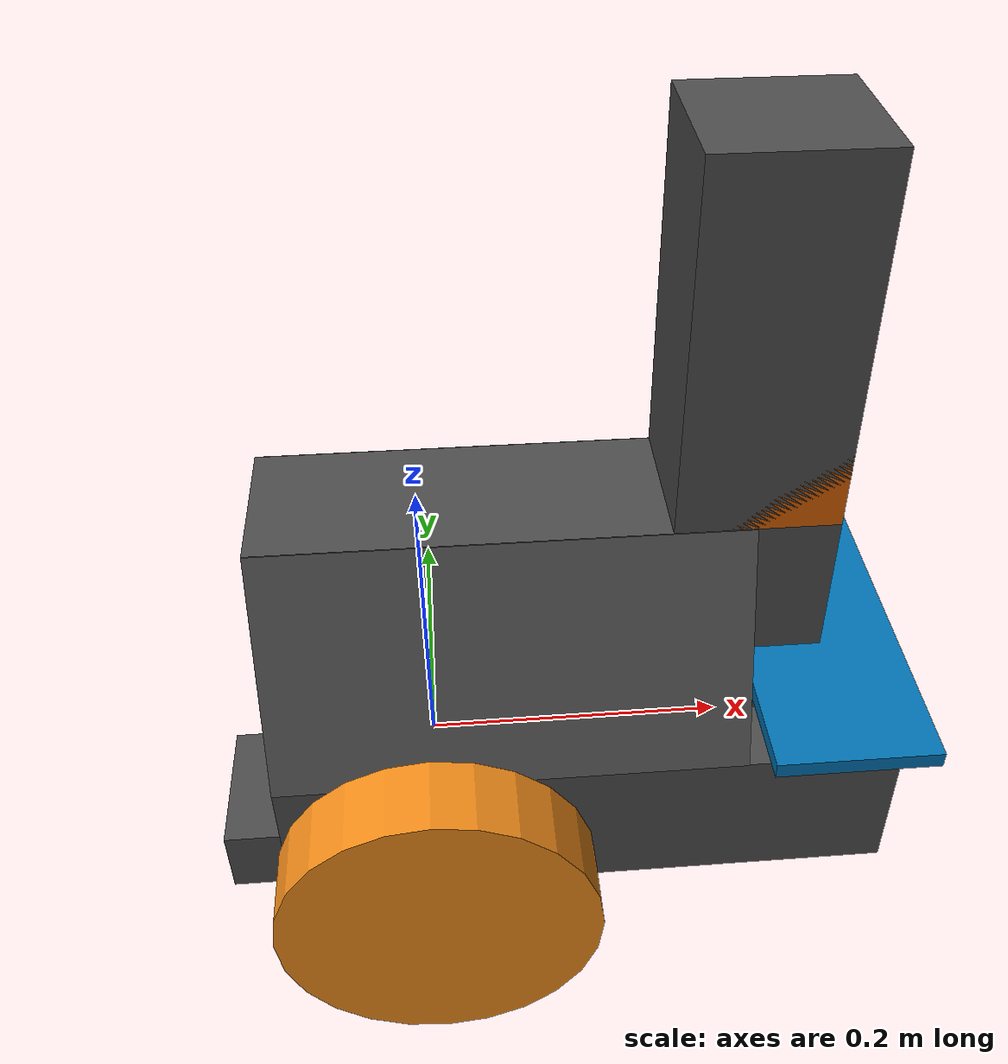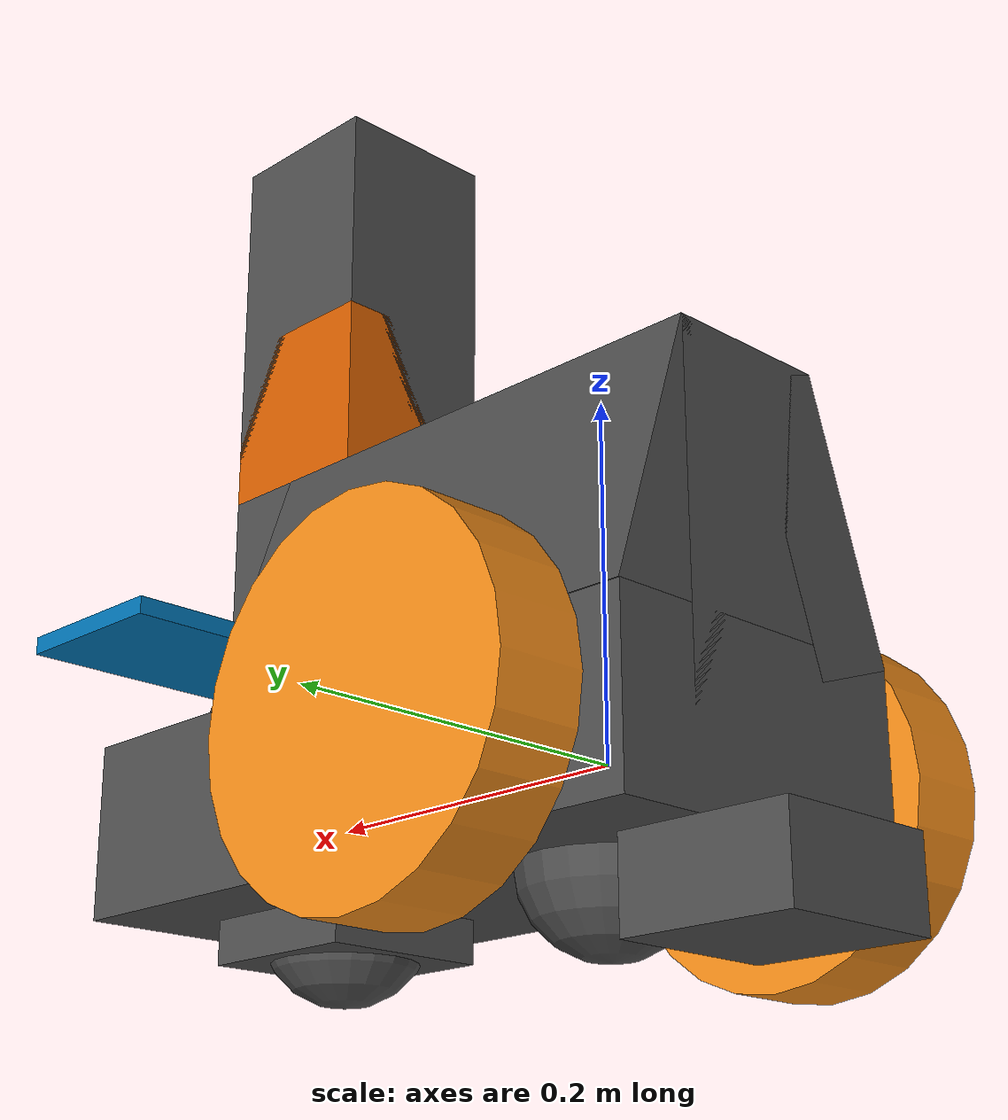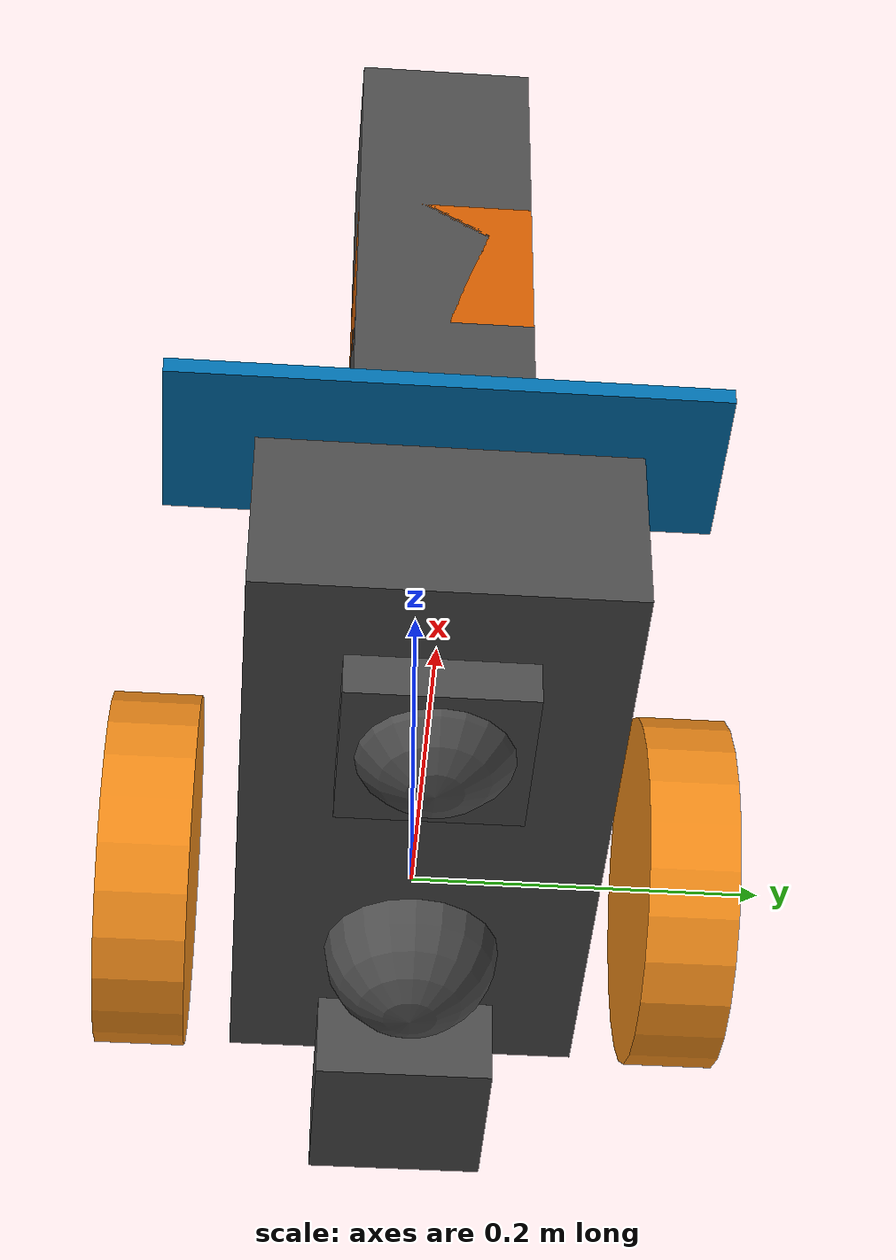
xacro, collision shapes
<?xml version='1.0'?>

<robot name="ucho_bot" xmlns:xacro="http://www.ros.org/wiki/xacro">

<xacro:include filename="$(find udacity_map)/urdf/ucho_bot.gazebo" />

  <link name="robot_footprint"></link>

<!--Chassis-->
  <link name="chassis">

    <inertial>
      <mass value="15.0"/>
      <origin xyz="0.0 0 0" rpy=" 0 0 0"/>
      <inertia
          ixx="0.1" ixy="0" ixz="0"
          iyy="0.1" iyz="0"
          izz="0.1"
      />
    </inertial>
				<!--Piece1-->
    <collision name='piece1_coll'>
      <origin xyz="0.1 0 0" rpy=" 0 0 0"/>
      <geometry>
        <box size=".4 .2 .1"/>
      </geometry>
    </collision>

    <visual name='piece1_visu'>
      <origin xyz="0.1 0 0" rpy=" 0 0 0"/>
      <geometry>
        <box size=".4 .2 .1"/>
      </geometry>
    </visual>

				<!--Piece2-->
    <collision name='piece2_coll'>
      <origin xyz="0.05 0 0.1" rpy=" 1.5708 0 0"/>
      <geometry>
        <box size=".3 .2 .1"/>
      </geometry>
    </collision>

    <visual name='piece2_visu'>
      <origin xyz="0.05 0 0.1" rpy=" 1.5708 0 0"/>
      <geometry>
        <box size=".3 .2 .1"/>
      </geometry>
    </visual>

				<!--Piece3-->
    <collision name='piece3_coll'>
      <origin xyz="0.05 -0.049 0.116" rpy=" -0.32175 0 0"/>
      <geometry>
        <box size=".3 .0560 .1581"/>
      </geometry>
    </collision>

    <visual name='piece3_visu'>
      <origin xyz="0.05 -0.049 0.116" rpy=" -0.32175 0 0"/>
      <geometry>
        <box size=".3 .0560 .1581"/>
      </geometry>
    </visual>

				<!--Piece4-->
    <collision name='piece4_coll'>
      <origin xyz="0.05 0.049 0.116" rpy=" 0.32175 0 0"/>
      <geometry>
        <box size=".3 .0560 .1581"/>
      </geometry>
    </collision>

    <visual name='piece4_visu'>
      <origin xyz="0.05 0.049 0.116" rpy=" 0.32175 0 0"/>
      <geometry>
        <box size=".3 .0560 .1581"/>
      </geometry>
    </visual>

				<!--Piece5-->
    <collision name='piece5_coll'>
      <origin xyz="0.20 0 0.175" rpy=" 0 0 0"/>
      <geometry>
        <box size=".1 .1 .5"/>
      </geometry>
    </collision>

    <visual name='piece5_visu'>
      <origin xyz="0.20 0 0.175" rpy=" 0 0 0"/>
      <geometry>
        <box size=".1 .1 .05"/>
      </geometry>
    </visual>

                                <!--BallBack-->
    <collision name='back_caster_collision'>
      <origin xyz="0 0 -0.05" rpy=" 0 0 0"/>
      <geometry>
        <sphere radius="0.049"/>
      </geometry>
    </collision>

    <visual name='back_caster_visual'>
      <origin xyz="0 0 -0.05" rpy=" 0 0 0"/>
      <geometry>
        <sphere radius="0.05"/>
      </geometry>
    </visual>

                               <!--BallFront-->
    <collision name='front_caster_collision'>
      <origin xyz="0.2 0 -0.05" rpy=" 0 0 0"/>
      <geometry>
        <sphere radius="0.049"/>
      </geometry>
    </collision>

    <visual name='front_caster_visual'>
      <origin xyz="0.2 0 -0.05" rpy=" 0 0 0"/>
      <geometry>
        <sphere radius="0.05"/>
      </geometry>
    </visual>

                               <!--BarBack-->
    <collision name='back_barra_collision'>
      <origin xyz="-0.1 0 -0.075" rpy=" 0 0 0"/>
      <geometry>
        <box size=".1 .1 .05"/>
      </geometry>
    </collision>

    <visual name='back_barra_visual'>
      <origin xyz="-0.1 0 -0.075" rpy=" 0 0 0"/>
      <geometry>
        <box size=".1 .1 .05"/>
      </geometry>
    </visual>

  </link>

  <joint name="robot_footprint_joint" type="fixed">
    <origin xyz="0 0 0" rpy="0 0 0" />
    <parent link="robot_footprint"/>
    <child link="chassis" />
  </joint>

<!--Wheels-->
  <link name="left_wheel">

    <inertial>
      <mass value="5.0"/>
      <origin xyz="0.0 0 0" rpy=" 0 0 0"/>
      <inertia
          ixx="0.1" ixy="0" ixz="0"
          iyy="0.1" iyz="0"
          izz="0.1"
      />
    </inertial>

    <collision>
      <origin xyz="0 0 0" rpy="1.5707 0 0"/>
      <geometry>
        <cylinder radius="0.1" length="0.05"/>
      </geometry>
    </collision>

    <visual>
      <origin xyz="0 0 0" rpy="1.5707 0 0"/>
      <geometry>
        <cylinder radius="0.1" length="0.05"/>
      </geometry>
    </visual>

  </link>

  <joint type="continuous" name="left_wheel_hinge" >
    <origin xyz="0 0.15 0" rpy="0 0 0"/>
    <child link="left_wheel"/>
    <parent link="chassis" />
    <axis xyz="0 1 0" rpy="0 0 0" />
    <limit effort="10000" velocity="1000" />
    <joint_properties damping="1.0" friction="1.0" />
  </joint>

  <link name="right_wheel">

    <inertial>
      <mass value="5.0"/>
      <origin xyz="0.0 0 0" rpy=" 0 0 0"/>
      <inertia
          ixx="0.1" ixy="0" ixz="0"
          iyy="0.1" iyz="0"
          izz="0.1"
      />
    </inertial>

    <collision>
      <origin xyz="0 0 0" rpy="1.5707 0 0"/>
      <geometry>
        <cylinder radius="0.1" length="0.05"/>
      </geometry>
    </collision>

    <visual>
      <origin xyz="0 0 0" rpy="1.5707 0 0"/>
      <geometry>
        <cylinder radius="0.1" length="0.05"/>
      </geometry>
    </visual>
  </link>

  <joint type="continuous" name="right_wheel_hinge" >
    <origin xyz="0 -0.15 0" rpy="0 0 0"/>
    <child link="right_wheel"/>
    <parent link="chassis" />
    <axis xyz="0 1 0" rpy="0 0 0" />
    <limit effort="10000" velocity="1000" />
    <joint_properties damping="1.0" friction="1.0" />
  </joint>

<!--Camera-->
  <link name="camera">

    <inertial>
      <mass value="0.1"/>
      <origin xyz="0 0 0" rpy=" 0 0 0"/>
      <inertia
          ixx="1e-6" ixy="0" ixz="0"
          iyy="1e-6" iyz="0"
          izz="1e-6"
      />
    </inertial>

    <collision>
      <origin xyz="0 0 0" rpy=" 0 0 0"/>
      <geometry>
        <box size="0.1 0.3 0.01" />
      </geometry>
    </collision>

    <visual>
      <origin xyz="0.025 0 0" rpy=" 0 0 0"/>
      <geometry>
        <mesh filename="package://udacity_map/meshes/kinect.dae" />
        <!--box size="0.05 0.2 0.05" /-->
      </geometry>
    </visual>

  </link>

  <joint type="fixed" name="camera_link" >
    <origin xyz="0.25 0 0.1" rpy="0 0 0" />
    <child link="camera" />
    <parent link="chassis" />
  </joint>

<!--Laser-->
  <link name="hokuyo">

    <inertial>
      <mass value="0.1"/>
      <origin xyz="0 0 0" rpy=" 0 0 0"/>
      <inertia
          ixx="1e-6" ixy="0" ixz="0"
          iyy="1e-6" iyz="0"
          izz="1e-6"
      />
    </inertial>

    <collision>
      <origin xyz="0 0 0" rpy="0 0 0"/>
      <geometry>
        <box size="0.1 0.1 0.1" />
      </geometry>
    </collision>

    <visual>
      <origin xyz="0 0 -0.025" rpy="0 0 0"/>
      <geometry>
        <mesh filename="package://udacity_map/meshes/hokuyo.dae" />
      </geometry>
    </visual>

  </link>

<!--Joint-->
  <joint name="camera_joint" type="fixed">
      <origin xyz="0 0 0" rpy="-1.5707 0 -1.5707"/>
      <parent link="camera"/>
      <child link="camera_rgbd_frame"/>
  </joint>

<link name="camera_rgbd_frame"/>

  <joint type="fixed" name="hokuyo_joint" >
    <origin xyz="0.20 0 0.25" />
    <child link="hokuyo" />
    <parent link="chassis" />
  </joint>

</robot>
